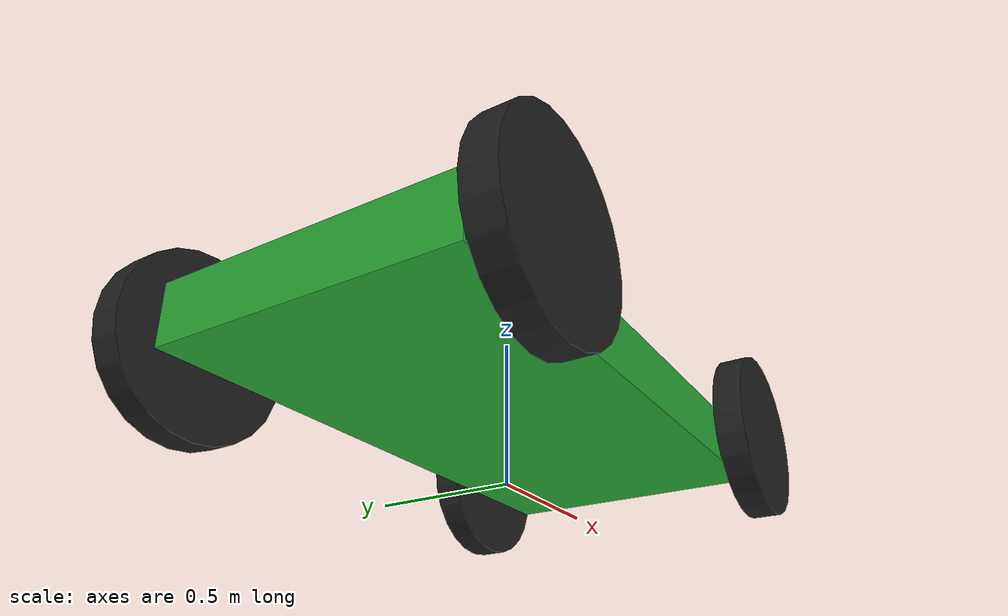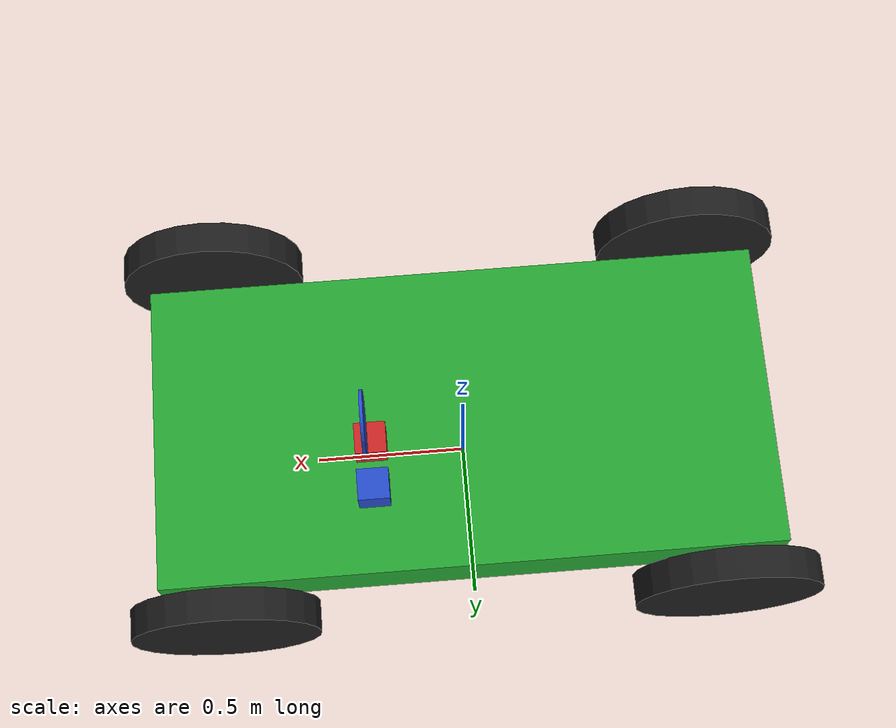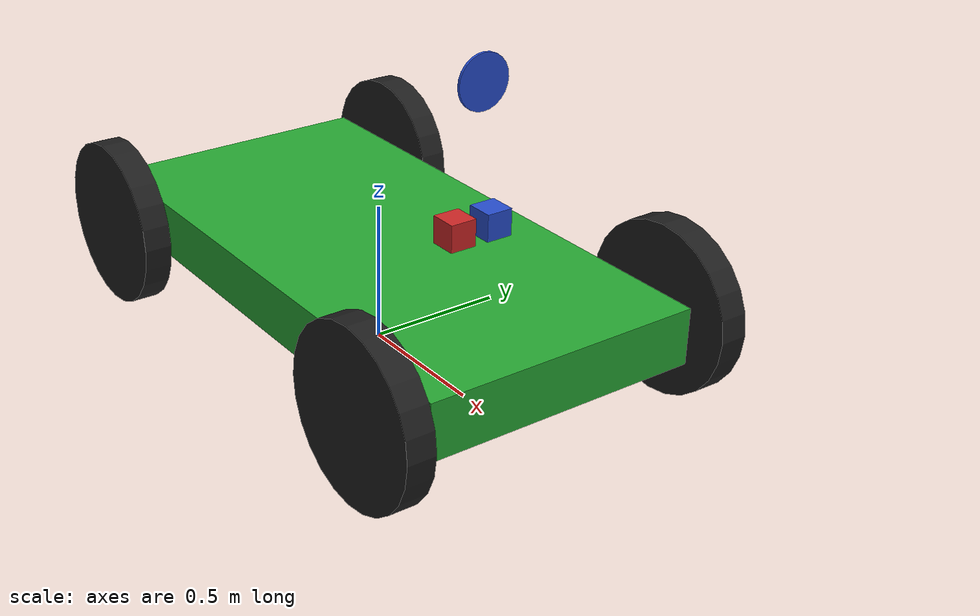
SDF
<?xml version='1.0'?>
<sdf version='1.6'>
  <model name='cart'>
    <model name='car'>
      <link name='chassis'>
        <pose frame=''>0 0 0.3 0 -0 0</pose>
        <collision name='collision'>
          <geometry>
            <box>
              <size>2 1 0.2</size>
            </box>
          </geometry>
        </collision>
        <visual name='visual'>
          <geometry>
            <box>
              <size>2 1 0.2</size>
            </box>
          </geometry>
          <material>
            <script>
              <uri>file://media/materials/scripts/gazebo.material</uri>
              <name>Gazebo/Green</name>
            </script>
          </material>
        </visual>
      </link>
      <link name='front_left_wheel'>
        <pose frame=''>0.8 0.6 0.3 -0 1.5707 1.5707</pose>
        <collision name='collision'>
          <geometry>
            <cylinder>
              <radius>0.3</radius>
              <length>0.1</length>
            </cylinder>
          </geometry>
        </collision>
        <visual name='visual'>
          <geometry>
            <cylinder>
              <radius>0.3</radius>
              <length>0.1</length>
            </cylinder>
          </geometry>
          <material>
            <script>
              <uri>file://media/materials/scripts/gazebo.material</uri>
              <name>Gazebo/Black</name>
            </script>
          </material>
        </visual>
      </link>
      <link name='front_right_wheel'>
        <pose frame=''>0.8 -0.6 0.3 -0 1.5707 1.5707</pose>
        <collision name='collision'>
          <geometry>
            <cylinder>
              <radius>0.3</radius>
              <length>0.1</length>
            </cylinder>
          </geometry>
        </collision>
        <visual name='visual'>
          <geometry>
            <cylinder>
              <radius>0.3</radius>
              <length>0.1</length>
            </cylinder>
          </geometry>
          <material>
            <script>
              <uri>file://media/materials/scripts/gazebo.material</uri>
              <name>Gazebo/Black</name>
            </script>
          </material>
        </visual>
      </link>
      <link name='back_right_wheel'>
        <pose frame=''>-0.8 -0.6 0.3 -0 1.5707 1.5707</pose>
        <collision name='collision'>
          <geometry>
            <cylinder>
              <radius>0.3</radius>
              <length>0.1</length>
            </cylinder>
          </geometry>
        </collision>
        <visual name='visual'>
          <geometry>
            <cylinder>
              <radius>0.3</radius>
              <length>0.1</length>
            </cylinder>
          </geometry>
          <material>
            <script>
              <uri>file://media/materials/scripts/gazebo.material</uri>
              <name>Gazebo/Black</name>
            </script>
          </material>
        </visual>
      </link>
      <link name='back_left_wheel'>
        <pose frame=''>-0.8 0.6 0.3 -0 1.5707 1.5707</pose>
        <collision name='collision'>
          <geometry>
            <cylinder>
              <radius>0.3</radius>
              <length>0.1</length>
            </cylinder>
          </geometry>
        </collision>
        <visual name='visual'>
          <geometry>
            <cylinder>
              <radius>0.3</radius>
              <length>0.1</length>
            </cylinder>
          </geometry>
          <material>
            <script>
              <uri>file://media/materials/scripts/gazebo.material</uri>
              <name>Gazebo/Black</name>
            </script>
          </material>
        </visual>
      </link>
      <link name='gas_pedal'>
        <pose frame=''>0.3 0.1 0.5 0 -0 0</pose>
        <collision name='collision'>
          <geometry>
            <box>
              <size>0.1 0.1 0.1</size>
            </box>
          </geometry>
        </collision>
        <visual name='visual'>
          <geometry>
            <box>
              <size>0.1 0.1 0.1</size>
            </box>
          </geometry>
          <material>
            <script>
              <uri>file://media/materials/scripts/gazebo.material</uri>
              <name>Gazebo/Red</name>
            </script>
          </material>
        </visual>
      </link>
      <link name='brake_pedal'>
        <pose frame=''>0.3 0.25 0.5 0 -0 0</pose>
        <collision name='collision'>
          <geometry>
            <box>
              <size>0.1 0.1 0.1</size>
            </box>
          </geometry>
        </collision>
        <visual name='visual'>
          <geometry>
            <box>
              <size>0.1 0.1 0.1</size>
            </box>
          </geometry>
          <material>
            <script>
              <uri>file://media/materials/scripts/gazebo.material</uri>
              <name>Gazebo/Blue</name>
            </script>
          </material>
        </visual>
      </link>
      <link name='steering_wheel'>
        <pose frame=''>0.3 0.2 1 0 1.5707 0</pose>
        <collision name='collision'>
          <geometry>
            <cylinder>
              <radius>0.1</radius>
              <length>0.01</length>
            </cylinder>
          </geometry>
        </collision>
        <visual name='visual'>
          <geometry>
            <cylinder>
              <radius>0.1</radius>
              <length>0.01</length>
            </cylinder>
          </geometry>
          <material>
            <script>
              <uri>file://media/materials/scripts/gazebo.material</uri>
              <name>Gazebo/Blue</name>
            </script>
          </material>
        </visual>
      </link>
      <joint name='gas_joint' type='prismatic'>
        <parent>chassis</parent>
        <child>gas_pedal</child>
        <axis>
          <xyz>1 0 0</xyz>
          <limit>
            <lower>0</lower>
            <upper>0.2</upper>
          </limit>
          <use_parent_model_frame>1</use_parent_model_frame>
        </axis>
      </joint>
      <joint name='brake_joint' type='prismatic'>
        <parent>chassis</parent>
        <child>brake_pedal</child>
        <axis>
          <xyz>1 0 0</xyz>
          <limit>
            <lower>0</lower>
            <upper>0.2</upper>
          </limit>
          <use_parent_model_frame>1</use_parent_model_frame>
        </axis>
      </joint>
      <joint name='steering_joint' type='revolute'>
        <parent>chassis</parent>
        <child>steering_wheel</child>
        <axis>
          <xyz>1 0 0</xyz>
          <limit>
            <lower>-7.853</lower>
            <upper>7.853</upper>
          </limit>
          <use_parent_model_frame>1</use_parent_model_frame>
        </axis>
      </joint>
      <joint name='front_left_joint' type='revolute2'>
        <parent>chassis</parent>
        <child>front_left_wheel</child>
        <axis>
          <xyz>0 0 1</xyz>
          <limit>
            <lower>0</lower>
            <upper>0</upper>
          </limit>
          <use_parent_model_frame>1</use_parent_model_frame>
        </axis>
        <axis2>
          <xyz>0 1 0</xyz>
          <use_parent_model_frame>1</use_parent_model_frame>
        </axis2>
        <physics>
          <ode>
            <limit>
              <cfm>0</cfm>
              <erp>0.9</erp>
            </limit>
          </ode>
        </physics>
      </joint>
      <joint name='front_right_joint' type='revolute2'>
        <parent>chassis</parent>
        <child>front_right_wheel</child>
        <axis>
          <xyz>0 0 1</xyz>
          <limit>
            <lower>0</lower>
            <upper>0</upper>
          </limit>
          <use_parent_model_frame>1</use_parent_model_frame>
        </axis>
        <axis2>
          <xyz>0 1 0</xyz>
          <use_parent_model_frame>1</use_parent_model_frame>
        </axis2>
        <physics>
          <ode>
            <limit>
              <cfm>0</cfm>
              <erp>0.9</erp>
            </limit>
          </ode>
        </physics>
      </joint>
      <joint name='back_right_joint' type='revolute2'>
        <parent>chassis</parent>
        <child>back_right_wheel</child>
        <axis>
          <xyz>0 0 1</xyz>
          <limit>
            <lower>0</lower>
            <upper>0</upper>
          </limit>
          <use_parent_model_frame>1</use_parent_model_frame>
        </axis>
        <axis2>
          <xyz>0 1 0</xyz>
          <use_parent_model_frame>1</use_parent_model_frame>
        </axis2>
        <physics>
          <ode>
            <limit>
              <cfm>0</cfm>
              <erp>0.9</erp>
            </limit>
          </ode>
        </physics>
      </joint>
      <joint name='back_left_joint' type='revolute2'>
        <parent>chassis</parent>
        <child>back_left_wheel</child>
        <axis>
          <xyz>0 0 1</xyz>
          <limit>
            <lower>0</lower>
            <upper>0</upper>
          </limit>
          <use_parent_model_frame>1</use_parent_model_frame>
        </axis>
        <axis2>
          <xyz>0 1 0</xyz>
          <use_parent_model_frame>1</use_parent_model_frame>
        </axis2>
        <physics>
          <ode>
            <limit>
              <cfm>0</cfm>
              <erp>0.9</erp>
            </limit>
          </ode>
        </physics>
      </joint>
      <plugin name='vehicle' filename='libVehiclePlugin.so'>
        <front_left>front_left_joint</front_left>
        <front_right>front_right_joint</front_right>
        <back_left>back_left_joint</back_left>
        <back_right>back_right_joint</back_right>
        <gas>gas_joint</gas>
        <brake>brake_joint</brake>
        <steering>steering_joint</steering>
        <front_power>10</front_power>
        <rear_power>10</rear_power>
        <tire_angle_range>0.5</tire_angle_range>
        <max_speed>10</max_speed>
        <aero_load>0.1</aero_load>
      </plugin>
      <pose frame=''>-0 -0 0 0 -0 0</pose>
    </model>
    <static>0</static>
    <allow_auto_disable>1</allow_auto_disable>
  </model>
</sdf>
